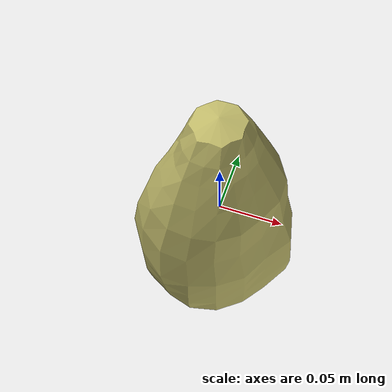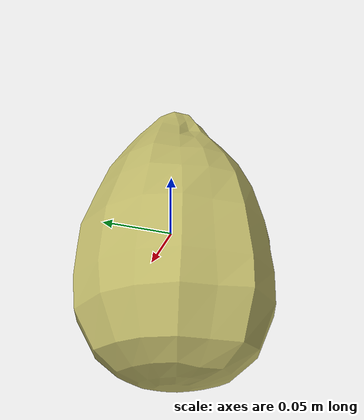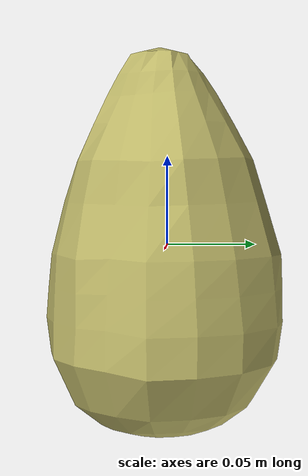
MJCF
<mujoco model="Lettuce_2">
  <compiler autolimits="true" boundmass="0.01" angle="radian"/>
  <default>
    <default class="/">
      <default class="__VISUAL_MJT__">
        <geom contype="0" conaffinity="0" group="0"/>
      </default>
      <default class="__STRUCTURAL_MJT__">
        <geom contype="8" conaffinity="15" group="4" friction="0.90000000000000002 0.90000000000000002 0.001" solref="0.025000000000000001 1" solimp="0.998 0.998 0.001"/>
      </default>
      <default class="__DYNAMIC_MJT__">
        <geom contype="1" conaffinity="15" group="4" friction="0.90000000000000002 0.90000000000000002 0.001" solref="0.025000000000000001 1" solimp="0.998 0.998 0.001"/>
      </default>
    </default>
  </default>
  <asset>
    <texture name="Lettuce1_Mat" type="2d" file="Lettuce1_AlbedoTransparency.png"/>
    <material name="material_Lettuce1_Mat" class="/" texture="Lettuce1_Mat" specular="0.5" shininess="0.5" rgba="0.9945233 1 0.60294119999999995 1"/>
    <mesh name="Lettuce_2_lettuce_a2" class="/" file="Lettuce_2_lettuce_a2/Lettuce_2_lettuce_a2.obj" scale="1 1 1"/>
  </asset>
  <worldbody>
    <body name="Lettuce_2">
      <joint name="Lettuce_2_free" class="/" type="free" pos="0 0 0" axis="0 0 1" stiffness="0" range="0 0" armature="0" damping="0.10000000000000001" frictionloss="0"/>
      <body name="Lettuce_2_lettuce_a2" pos="-0 -0.002 0.0014" quat="1 0 0 0">
        <geom name="Lettuce_2_lettuce_a2" class="__VISUAL_MJT__" type="mesh" material="material_Lettuce1_Mat" shellinertia="true" mesh="Lettuce_2_lettuce_a2"/>
        <geom name="Lettuce_2_PrimitiveCollider_0" class="__DYNAMIC_MJT__" type="capsule" size="0.069144248962402344 0.01911405473947525" rgba="0 1 0 1" pos="-0 0.0020000764634460211 -0.02509821392595768" quat="0.99999999999891198 1.4751396607739272e-06 0 0"/>
        <geom name="Lettuce_2_PrimitiveCollider_1" class="__DYNAMIC_MJT__" type="capsule" size="0.048381377011537552 0.0093983188271522522" rgba="0 1 0 1" pos="-0 0.0020940192043781281 0.052780892699956894" quat="0.99999999999891198 1.4751396607739272e-06 0 0"/>
      </body>
    </body>
  </worldbody>
</mujoco>
